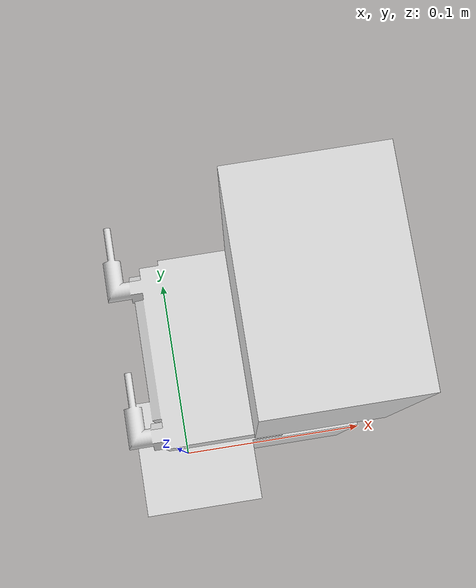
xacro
<?xml version="1.0" ?>
<robot name="za6_versabuilt_multigrip" xmlns:xacro="http://ros.org/wiki/xacro">
  <xacro:arg name="prefix" default=""/>
  <xacro:arg name="build" default="false"/>
  <xacro:if value="$(arg build)">
    <xacro:include filename="$(cwd)/urdf/versabuilt_multigrip_macro.xacro"/>
  </xacro:if>
  <xacro:unless value="$(arg build)">
    <xacro:include
        filename="$(find za6_tools)/urdf/versabuilt_multigrip_macro.xacro"/>
  </xacro:unless>

  <link name="tool0"/>
  <joint name="flange-tool0" type="fixed">
    <parent link="manual_grasp_link"/>
    <child link="tool0"/>
    <origin rpy="0.08726646259971647 0 -3.141592653589793" xyz="0.0 -0.016124 -0.18430"/>
  </joint>

  <!-- 'flange' frame: default pose reference frame -->
  <link name="flange" />

  <xacro:versabuilt_multigrip_macro
      prefix="$(arg prefix)"
      connected_to="$(arg prefix)flange"/>

  <!-- Moveit Studio requires a link name called manual_grasp_link to
       perform quick tasks such as inspect surface -->
  <link name="manual_grasp_link" />
  <joint name="$(arg prefix)manual_grasp_joint" type="fixed">
    <origin xyz="0 0 0" rpy="0 0 0" />
    <parent link="$(arg prefix)grasp_link" />
    <child link="$(arg prefix)manual_grasp_link" />
  </joint>
</robot>

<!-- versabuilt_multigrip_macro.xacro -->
<robot xmlns:xacro="http://www.ros.org/wiki/xacro">
  <xacro:macro name="versabuilt_multigrip_macro" params="prefix connected_to">

    <material name="${prefix}Aluminium">
      <color rgba="0.9 0.9 0.9 1.0"/>
    </material>

    <!-- link list -->
    <link name="${prefix}za6_multigrip_adapter"/>

    <link name="${prefix}multigrip_base_and_fixed_jaw">
      <visual>
        <geometry>
          <mesh filename="package://za6_tools/meshes/versabuilt_multigrip_base_and_fixed_jaw.stl"/>
        </geometry>
        <origin rpy="0.0 0.0 0.0" xyz="0 0 0"/>
        <material name="${prefix}Aluminium">
        </material>
      </visual>
      <collision>
        <geometry>
          <mesh filename="package://za6_tools/meshes/versabuilt_multigrip_base_and_fixed_jaw_collision.stl"/>
        </geometry>
        <origin rpy="0.0 0.0 0.0" xyz="0 0 0"/>
      </collision>
      <inertial>
        <mass value="100"/>
        <inertia ixx="1.0" ixy="0.0" ixz="0.0" iyy="1.0" iyz="0.0" izz="1.0"/>
      </inertial>
    </link>

    <link name="${prefix}multigrip_moving_jaw">
      <visual>
        <geometry>
          <mesh filename="package://za6_tools/meshes/versabuilt_multigrip_moving_jaw.stl"/>
        </geometry>
        <origin rpy="0.0 0.0 0.0" xyz="0 0 0"/>
        <material name="${prefix}Aluminium">
        </material>
      </visual>
      <collision>
        <geometry>
          <mesh filename="package://za6_tools/meshes/versabuilt_multigrip_moving_jaw_collision.stl"/>
        </geometry>
        <origin rpy="0.0 0.0 0.0" xyz="0 0 0"/>
      </collision>
      <inertial>
        <mass value="100"/>
        <inertia ixx="1.0" ixy="0.0" ixz="0.0" iyy="1.0" iyz="0.0" izz="1.0"/>
      </inertial>
    </link>

    <!-- joint list -->
    <joint name="${prefix}flange-multigrip_adapter" type="fixed">
      <parent link="${connected_to}"/>
      <child link="${prefix}za6_multigrip_adapter"/>
      <axis xyz="0 0 0"/>
      <origin rpy="0.0 0.0 0.0" xyz="0 0 0"/>
    </joint>

    <joint name="${prefix}adapter-multigrip_base_and_fixed_jaw" type="fixed">
      <parent link="${prefix}za6_multigrip_adapter"/>
      <child link="${prefix}multigrip_base_and_fixed_jaw"/>
      <axis xyz="0 0 1"/>
      <origin xyz="0 0 0" rpy="${pi/2.0} -${pi/2.0} -${pi/2.0}"/>
    </joint>

    <joint name="${prefix}multigrip_moving_jaw_joint" type="fixed">
      <parent link="${prefix}multigrip_base_and_fixed_jaw" />
      <child link="${prefix}multigrip_moving_jaw" />
      <axis xyz="0 0 1"/>
      <origin xyz="0.0 0 0.0" rpy="0 0 ${pi}" />
    </joint>

    <!-- Attach grasp_link to multigrip base for now -->
    <link name="grasp_link" />
    <joint name="grasp_joint" type="fixed">
      <parent link="$(arg prefix)multigrip_base_and_fixed_jaw" />
      <child link="grasp_link" />
      <origin xyz="0.0 0.0 0.0" rpy="0.0 0.0 0.0" />
    </joint>

  </xacro:macro>
</robot>
